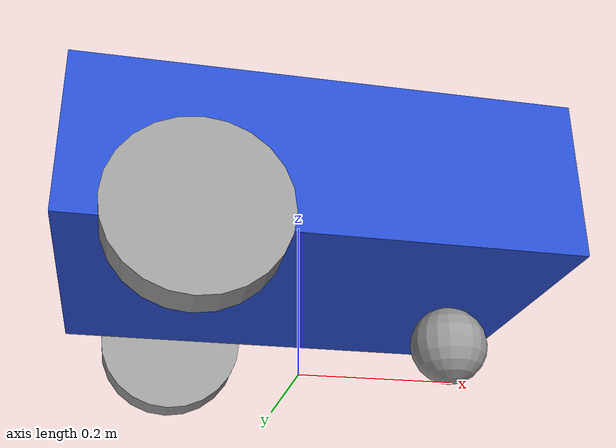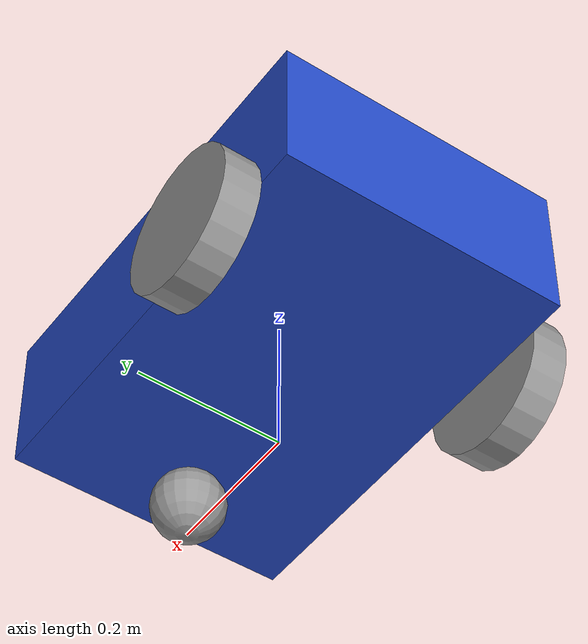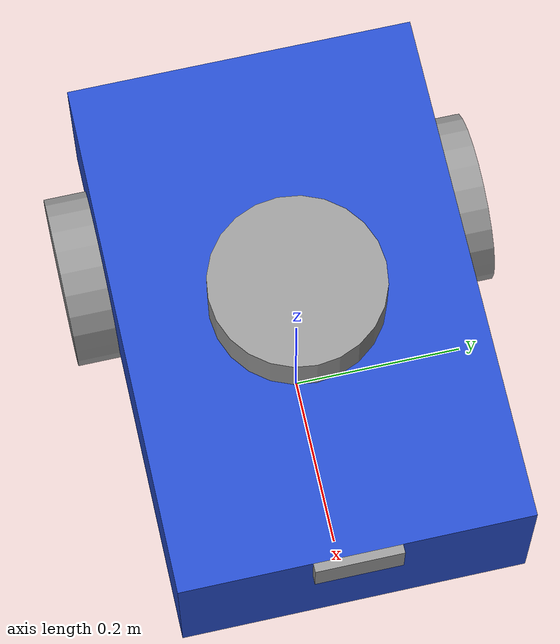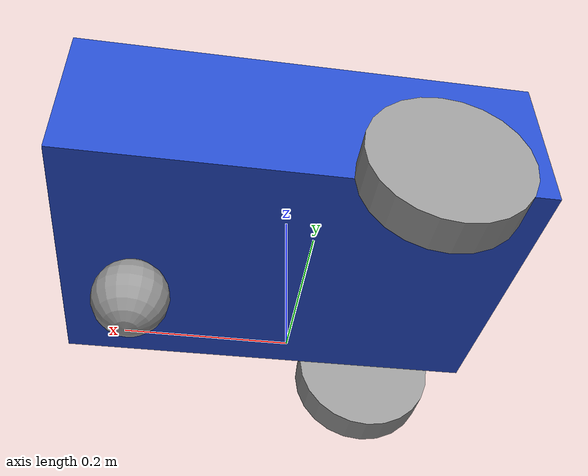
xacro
<?xml version="1.0"?>
<!-- everything we write must be b/w below 2 lines  -->
<robot name="my_robot" xmlns:xacro="http://wwww.ros.org/wiki/xacro">

    <xacro:include filename="common_properties.xacro" />
    <xacro:include filename="mobile_base.xacro" />
    <xacro:include filename="mobile_base_gazebo.xacro" />
    <xacro:include filename="camera.xacro" />

</robot>

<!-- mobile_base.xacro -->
<robot xmlns:xacro="http://www.ros.org/wiki/xacro" >

    <xacro:property name="base_length" value="0.6" />
    <xacro:property name="base_width" value="0.4" />
    <xacro:property name="base_height" value="0.2" />
    <xacro:property name="wheel_radius" value="0.1" />
    <xacro:property name="wheel_length" value="0.05" />
    <xacro:property name="scan_wheel_length" value="0.06" />

    <link name="base_footprint" />

    <link name="base_link">
        <visual>
            <geometry>
                <box size="${base_length} ${base_width} ${base_height}"/>
            </geometry>
            <origin xyz="0 0 0.1" rpy="0 0 0" />
            <material name="blue" />
        </visual>
        <collision>
            <geometry>
                <box size="${base_length} ${base_width} ${base_height}"/>
            </geometry>
            <origin xyz="0 0 0.1" rpy="0 0 0" />
        </collision>
        <xacro:box_inertia m="5.0" l="${3*base_length}" w="${3*base_width}" h="${3*base_height}"
                           xyz="0 0 0.1" rpy="0 0 0" />
    </link>

    <link name="base_scan">
        <visual>
            <geometry>
                <cylinder radius="${wheel_radius}" length="${scan_wheel_length}"/>
            </geometry>
            <origin xyz="0 0 0" rpy="0 0 0" />
            <material name="grey" />
        </visual>
        <collision>
            <geometry>
                <cylinder radius="${wheel_radius}" length="${scan_wheel_length}"/>
            </geometry>
            <origin xyz="0 0 0" rpy="0 0 0" />
        </collision>
        <xacro:wheel_inertia m="0.25" r="${3*wheel_radius}"  h="${3*scan_wheel_length}"
                             xyz="0 0 0" rpy="0 0 0" />
    </link>

    <xacro:macro name="wheel_link" params="prefix">
        <link name="${prefix}_wheel_link">
            <visual>
                <geometry>
                    <cylinder radius="${wheel_radius}" length="${wheel_length}" />
                </geometry>
                <origin xyz="0 0 0" rpy="${pi / 2.0} 0 0" />
                <material name="grey" />
            </visual>
            <collision>
                <geometry>
                    <cylinder radius="${wheel_radius}" length="${wheel_length}" />
                </geometry>
                <origin xyz="0 0 0" rpy="${pi / 2.0} 0 0" />
            </collision>
            <xacro:wheel_inertia m="1.0" r="${3*wheel_radius}" h="${3*wheel_length}"
                                 xyz="0 0 0" rpy="${pi / 2.0} 0 0" />
        </link>
    </xacro:macro>

    <xacro:wheel_link prefix="right" />
    <xacro:wheel_link prefix="left" />

    <link name="caster_wheel_link">
        <visual>
            <geometry>
                <sphere radius="${wheel_length}" />
            </geometry>
            <origin xyz="0 0 0" rpy="0 0 0"/>
            <material name="grey" />
        </visual>
        <collision>
            <geometry>
                <sphere radius="${wheel_length}" />
            </geometry>
            <origin xyz="0 0 0" rpy="0 0 0"/>
        </collision>
        <xacro:castor_wheel_inertia m="0.5" r="${3*wheel_length}"
                                    xyz="0 0 0" rpy="0 0 0" />
    </link>

    <joint name="base_joint" type="fixed">
        <parent link="base_footprint" />
        <child link="base_link" />
        <origin xyz="0 0 ${wheel_radius}" rpy="0 0 0" />
    </joint>

    <joint name="base_scan_joint" type="fixed">
        <parent link="base_link"/>
        <child link="base_scan"/>
        <origin xyz="0 0 0.23" rpy="0 0 0"/>
    </joint>

    <joint name="base_right_wheel_joint" type="continuous">
        <parent link="base_link" />
        <child link="right_wheel_link" />
        <origin xyz="${-base_length / 4.0} ${-(base_width + wheel_length) / 2.0} 0" rpy="0 0 0" />
        <axis xyz="0 1 0" />
    </joint>

    <joint name="base_left_wheel_joint" type="continuous">
        <parent link="base_link" />
        <child link="left_wheel_link" />
        <origin xyz="${-base_length / 4.0} ${(base_width + wheel_length) / 2.0} 0" rpy="0 0 0" />
        <axis xyz="0 1 0" />
    </joint>

    <joint name="base_caster_wheel_joint" type="fixed" >
        <parent link="base_link" />
        <child link="caster_wheel_link" />
        <origin xyz="${base_length / 3.0} 0 ${-wheel_length}" rpy="0 0 0"/>
        <axis xyz="0 1 0"/>
    </joint>

</robot>

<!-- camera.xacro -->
<robot xmlns:xacro="http://www.ros.org/wiki/xacro" >

    <xacro:property name="camera_length" value="0.01" />
    <xacro:property name="camera_width" value="0.1" />
    <xacro:property name="camera_height" value="0.05" />

    <link name="camera_link">
        <visual>
            <geometry>
                <box size="${camera_length} ${camera_width} ${camera_height}" />
            </geometry>
            <material name="grey" />
        </visual>
        <collision>
            <geometry>
                <box size="${camera_length} ${camera_width} ${camera_height}" />
            </geometry>
        </collision>
        <xacro:box_inertia m="0.1" l="${camera_length}" w="${camera_width}" h="${camera_height}"
                           xyz="0 0 0" rpy="0 0 0" />
    </link>

    <joint name="base_camera_joint" type="fixed">
        <parent link="base_link" />
        <child link="camera_link" />
        <origin xyz="${(camera_length + base_length)/2} 0 ${base_height - camera_height/2}" rpy="0 0 0" />
    </joint>

    <link name="camera_link_optical">
    </link>

    <joint name="camera_optical_joint" type="fixed">
        <parent link="camera_link" />
        <child link="camera_link_optical" />
        <origin xyz="0 0 0" rpy="${-pi/2} 0 ${-pi/2}" />
    </joint>

    <gazebo reference="camera_link">
        <material>Gazebo/Red</material>
        <sensor name="camera_sensor" type="camera">
            <pose>0 0 0 0 0 0</pose>
            <visualize>true</visualize>
            <update_rate>10.0</update_rate>
            <plugin name="camera_controller" filename="libgazebo_ros_camera.so">
                <frame_name>camera_link_optical</frame_name>
            </plugin>
        </sensor>
    </gazebo>

</robot>
